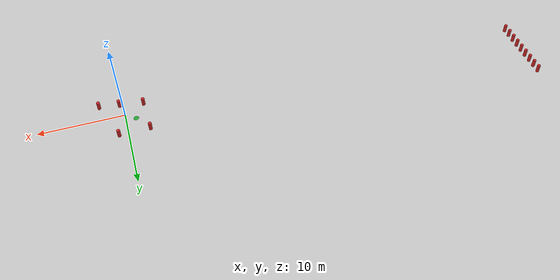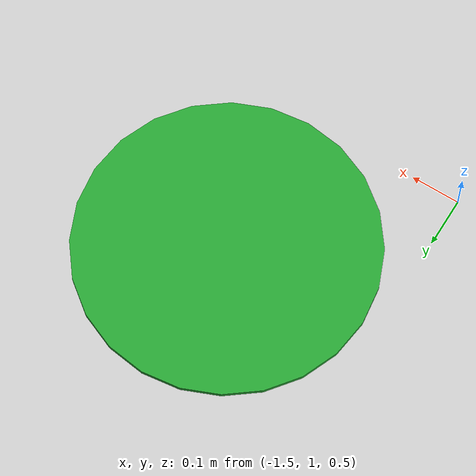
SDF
<sdf version="1.7">
 <world name="default">
  <light name="sun" type="directional">
   <pose>0 0 10 0 -0 0</pose>
   <diffuse>0.8 0.8 0.8 1</diffuse>
   <specular>0.2 0.2 0.2 1</specular>
   <attenuation>
    <range>1000</range>
    <constant>0.9</constant>
    <linear>0.01</linear>
    <quadratic>0.001</quadratic>
   </attenuation>
   <direction>-0.5 0.1 -0.9</direction>
   <spot><inner_angle>0</inner_angle><outer_angle>0</outer_angle><falloff>0</falloff></spot>
  </light>
  <model name="ground_plane">
   <static>1</static>
   <link name="link">
    <collision name="collision">
     <geometry><plane><normal>0 0 1</normal><size>100 100</size></plane></geometry>
     <surface>
      <contact><collide_bitmask>65535</collide_bitmask></contact>
      <friction><ode><mu>100</mu><mu2>50</mu2></ode></friction>
     </surface>
    </collision>
    <visual name="visual">
     <cast_shadows>0</cast_shadows>
     <geometry><plane><normal>0 0 1</normal><size>100 100</size></plane></geometry>
     <material>
      <script><uri>file://media/materials/scripts/gazebo.material</uri><name>Gazebo/Grey</name></script>
     </material>
    </visual>
   </link>
  </model>
  <physics type="ode">
   <max_step_size>0.01</max_step_size>
   <real_time_factor>1</real_time_factor>
   <real_time_update_rate>1000</real_time_update_rate>
  </physics>
  <gravity>0 0 -9.8</gravity>
  <magnetic_field>6e-06 2.3e-05 -4.2e-05</magnetic_field>
  <atmosphere type="adiabatic"/>
  <scene><ambient>0.4 0.4 0.4 1</ambient><background>0.7 0.7 0.7 1</background><shadows>1</shadows></scene>
  <spherical_coordinates>
   <surface_model>EARTH_WGS84</surface_model>
   <latitude_deg>0</latitude_deg>
   <longitude_deg>0</longitude_deg>
   <elevation>0</elevation>
   <heading_deg>0</heading_deg>
  </spherical_coordinates>
  <model name="cyl0">
   <pose>-2.50984 2.97699 0.49912 0 -0 6.9e-05</pose>
   <link name="link">
    <inertial>
     <mass>1</mass>
     <inertia><ixx>0.145833</ixx><ixy>0</ixy><ixz>0</ixz><iyy>0.145833</iyy><iyz>0</iyz><izz>0.125</izz></inertia>
    </inertial>
    <collision name="collision">
     <geometry><cylinder><radius>0.2</radius><length>1</length></cylinder></geometry>
    </collision>
    <visual name="visual">
     <geometry><cylinder><radius>0.2</radius><length>1</length></cylinder></geometry>
     <material>
      <script><name>Gazebo/Red</name><uri>file://media/materials/scripts/gazebo.material</uri></script>
     </material>
    </visual>
   </link>
   <static>1</static>
  </model>
  <model name="cyl1">
   <pose>-2.34005 -1.10671 0.49912 0 -0 7e-05</pose>
   <link name="link">
    <inertial>
     <mass>1</mass>
     <inertia><ixx>0.145833</ixx><ixy>0</ixy><ixz>0</ixz><iyy>0.145833</iyy><iyz>0</iyz><izz>0.125</izz></inertia>
    </inertial>
    <collision name="collision">
     <geometry><cylinder><radius>0.2</radius><length>1</length></cylinder></geometry>
    </collision>
    <visual name="visual">
     <geometry><cylinder><radius>0.2</radius><length>1</length></cylinder></geometry>
     <material>
      <script><name>Gazebo/Red</name><uri>file://media/materials/scripts/gazebo.material</uri></script>
     </material>
    </visual>
   </link>
   <static>1</static>
  </model>
  <model name="cyl2">
   <pose>0.422243 -1.60844 0.49912 0 -0 7e-05</pose>
   <link name="link">
    <inertial>
     <mass>1</mass>
     <inertia><ixx>0.145833</ixx><ixy>0</ixy><ixz>0</ixz><iyy>0.145833</iyy><iyz>0</iyz><izz>0.125</izz></inertia>
    </inertial>
    <collision name="collision">
     <geometry><cylinder><radius>0.2</radius><length>1</length></cylinder></geometry>
    </collision>
    <visual name="visual">
     <geometry><cylinder><radius>0.2</radius><length>1</length></cylinder></geometry>
     <material>
      <script><name>Gazebo/Red</name><uri>file://media/materials/scripts/gazebo.material</uri></script>
     </material>
    </visual>
   </link>
   <static>1</static>
  </model>
  <model name="cyl3">
   <pose>1.06288 3.00148 0.49912 0 -0 7e-05</pose>
   <link name="link">
    <inertial>
     <mass>1</mass>
     <inertia><ixx>0.145833</ixx><ixy>0</ixy><ixz>0</ixz><iyy>0.145833</iyy><iyz>0</iyz><izz>0.125</izz></inertia>
    </inertial>
    <collision name="collision">
     <geometry><cylinder><radius>0.2</radius><length>1</length></cylinder></geometry>
    </collision>
    <visual name="visual">
     <geometry><cylinder><radius>0.2</radius><length>1</length></cylinder></geometry>
     <material>
      <script><name>Gazebo/Red</name><uri>file://media/materials/scripts/gazebo.material</uri></script>
     </material>
    </visual>
   </link>
   <static>1</static>
  </model>
  <model name="cyl4">
   <pose>2.76284 -1.98083 0.49912 0 -0 7e-05</pose>
   <link name="link">
    <inertial>
     <mass>1</mass>
     <inertia><ixx>0.145833</ixx><ixy>0</ixy><ixz>0</ixz><iyy>0.145833</iyy><iyz>0</iyz><izz>0.125</izz></inertia>
    </inertial>
    <collision name="collision">
     <geometry><cylinder><radius>0.2</radius><length>1</length></cylinder></geometry>
    </collision>
    <visual name="visual">
     <geometry><cylinder><radius>0.2</radius><length>1</length></cylinder></geometry>
     <material>
      <script><name>Gazebo/Red</name><uri>file://media/materials/scripts/gazebo.material</uri></script>
     </material>
    </visual>
   </link>
   <static>1</static>
  </model>
  <model name="goal">
   <pose>-1.17156 1.30937 0.499096 4.8e-05 4.8e-05 -2.7e-05</pose>
   <link name="link">
    <inertial>
     <mass>1</mass>
     <inertia><ixx>0.145833</ixx><ixy>0</ixy><ixz>0</ixz><iyy>0.145833</iyy><iyz>0</iyz><izz>0.125</izz></inertia>
    </inertial>
    <collision name="collision">
     <geometry><cylinder><radius>0.3</radius><length>0.01</length></cylinder></geometry>
    </collision>
    <visual name="visual">
     <geometry><cylinder><radius>0.3</radius><length>0.01</length></cylinder></geometry>
     <material>
      <script><name>Gazebo/Green</name><uri>file://media/materials/scripts/gazebo.material</uri></script>
     </material>
    </visual>
   </link>
   <static>1</static>
  </model>
  <model name="cyl5">
   <pose>-49.9998 5.00028 0.499789 0.000423 0.000422 0.001215</pose>
   <link name="link">
    <inertial>
     <mass>1</mass>
     <inertia><ixx>0.145833</ixx><ixy>0</ixy><ixz>0</ixz><iyy>0.145833</iyy><iyz>0</iyz><izz>0.125</izz></inertia>
    </inertial>
    <collision name="collision">
     <geometry><cylinder><radius>0.2</radius><length>1</length></cylinder></geometry>
    </collision>
    <visual name="visual">
     <geometry><cylinder><radius>0.2</radius><length>1</length></cylinder></geometry>
     <material>
      <script><name>Gazebo/Red</name><uri>file://media/materials/scripts/gazebo.material</uri></script>
     </material>
    </visual>
   </link>
   <static>1</static>
  </model>
  <model name="cyl6">
   <pose>-49.9995 4.00016 0.497954 -0.000172 -0.000172 0.000772</pose>
   <link name="link">
    <inertial>
     <mass>1</mass>
     <inertia><ixx>0.145833</ixx><ixy>0</ixy><ixz>0</ixz><iyy>0.145833</iyy><iyz>0</iyz><izz>0.125</izz></inertia>
    </inertial>
    <collision name="collision">
     <geometry><cylinder><radius>0.2</radius><length>1</length></cylinder></geometry>
    </collision>
    <visual name="visual">
     <geometry><cylinder><radius>0.2</radius><length>1</length></cylinder></geometry>
     <material>
      <script><name>Gazebo/Red</name><uri>file://media/materials/scripts/gazebo.material</uri></script>
     </material>
    </visual>
   </link>
   <static>1</static>
  </model>
  <model name="cyl7">
   <pose>-50.0001 2.9998 0.5 0 -0 0.002103</pose>
   <link name="link">
    <inertial>
     <mass>1</mass>
     <inertia><ixx>0.145833</ixx><ixy>0</ixy><ixz>0</ixz><iyy>0.145833</iyy><iyz>0</iyz><izz>0.125</izz></inertia>
    </inertial>
    <collision name="collision">
     <geometry><cylinder><radius>0.2</radius><length>1</length></cylinder></geometry>
    </collision>
    <visual name="visual">
     <geometry><cylinder><radius>0.2</radius><length>1</length></cylinder></geometry>
     <material>
      <script><name>Gazebo/Red</name><uri>file://media/materials/scripts/gazebo.material</uri></script>
     </material>
    </visual>
   </link>
   <static>1</static>
  </model>
  <model name="cyl8">
   <pose>-50.0007 1.99999 0.499722 -0.000393 -0.000392 0.001969</pose>
   <link name="link">
    <inertial>
     <mass>1</mass>
     <inertia><ixx>0.145833</ixx><ixy>0</ixy><ixz>0</ixz><iyy>0.145833</iyy><iyz>0</iyz><izz>0.125</izz></inertia>
    </inertial>
    <collision name="collision">
     <geometry><cylinder><radius>0.2</radius><length>1</length></cylinder></geometry>
    </collision>
    <visual name="visual">
     <geometry><cylinder><radius>0.2</radius><length>1</length></cylinder></geometry>
     <material>
      <script><name>Gazebo/Red</name><uri>file://media/materials/scripts/gazebo.material</uri></script>
     </material>
    </visual>
   </link>
   <static>1</static>
  </model>
  <model name="cyl9">
   <pose>-49.9998 -0.00052 0.499789 0.000423 0.000422 0.000241</pose>
   <link name="link">
    <inertial>
     <mass>1</mass>
     <inertia><ixx>0.145833</ixx><ixy>0</ixy><ixz>0</ixz><iyy>0.145833</iyy><iyz>0</iyz><izz>0.125</izz></inertia>
    </inertial>
    <collision name="collision">
     <geometry><cylinder><radius>0.2</radius><length>1</length></cylinder></geometry>
    </collision>
    <visual name="visual">
     <geometry><cylinder><radius>0.2</radius><length>1</length></cylinder></geometry>
     <material>
      <script><name>Gazebo/Red</name><uri>file://media/materials/scripts/gazebo.material</uri></script>
     </material>
    </visual>
   </link>
   <static>1</static>
  </model>
  <model name="cyl10">
   <pose>-50.0003 0.999817 0.499824 -0.000249 -0.000249 0.000454</pose>
   <link name="link">
    <inertial>
     <mass>1</mass>
     <inertia><ixx>0.145833</ixx><ixy>0</ixy><ixz>0</ixz><iyy>0.145833</iyy><iyz>0</iyz><izz>0.125</izz></inertia>
    </inertial>
    <collision name="collision">
     <geometry><cylinder><radius>0.2</radius><length>1</length></cylinder></geometry>
    </collision>
    <visual name="visual">
     <geometry><cylinder><radius>0.2</radius><length>1</length></cylinder></geometry>
     <material>
      <script><name>Gazebo/Red</name><uri>file://media/materials/scripts/gazebo.material</uri></script>
     </material>
    </visual>
   </link>
   <static>1</static>
  </model>
  <model name="cyl11">
   <pose>-50.0002 6.00036 0.499824 0.000249 -0.000249 0.000271</pose>
   <link name="link">
    <inertial>
     <mass>1</mass>
     <inertia><ixx>0.145833</ixx><ixy>0</ixy><ixz>0</ixz><iyy>0.145833</iyy><iyz>0</iyz><izz>0.125</izz></inertia>
    </inertial>
    <collision name="collision">
     <geometry><cylinder><radius>0.2</radius><length>1</length></cylinder></geometry>
    </collision>
    <visual name="visual">
     <geometry><cylinder><radius>0.2</radius><length>1</length></cylinder></geometry>
     <material>
      <script><name>Gazebo/Red</name><uri>file://media/materials/scripts/gazebo.material</uri></script>
     </material>
    </visual>
   </link>
   <static>1</static>
  </model>
  <model name="cyl12">
   <pose>-50.0002 7.00058 0.497257 -0.000196 -4.2e-05 -0.000161</pose>
   <link name="link">
    <inertial>
     <mass>1</mass>
     <inertia><ixx>0.145833</ixx><ixy>0</ixy><ixz>0</ixz><iyy>0.145833</iyy><iyz>0</iyz><izz>0.125</izz></inertia>
    </inertial>
    <collision name="collision">
     <geometry><cylinder><radius>0.2</radius><length>1</length></cylinder></geometry>
    </collision>
    <visual name="visual">
     <geometry><cylinder><radius>0.2</radius><length>1</length></cylinder></geometry>
     <material>
      <script><name>Gazebo/Red</name><uri>file://media/materials/scripts/gazebo.material</uri></script>
     </material>
    </visual>
   </link>
   <static>1</static>
  </model>
  <model name="cyl13">
   <pose>-49.9997 8.00067 0.499886 -0.000225 4.7e-05 -0.000618</pose>
   <link name="link">
    <inertial>
     <mass>1</mass>
     <inertia><ixx>0.145833</ixx><ixy>0</ixy><ixz>0</ixz><iyy>0.145833</iyy><iyz>0</iyz><izz>0.125</izz></inertia>
    </inertial>
    <collision name="collision">
     <geometry><cylinder><radius>0.2</radius><length>1</length></cylinder></geometry>
    </collision>
    <visual name="visual">
     <geometry><cylinder><radius>0.2</radius><length>1</length></cylinder></geometry>
     <material>
      <script><name>Gazebo/Red</name><uri>file://media/materials/scripts/gazebo.material</uri></script>
     </material>
    </visual>
   </link>
   <static>1</static>
  </model>
 </world>
</sdf>
